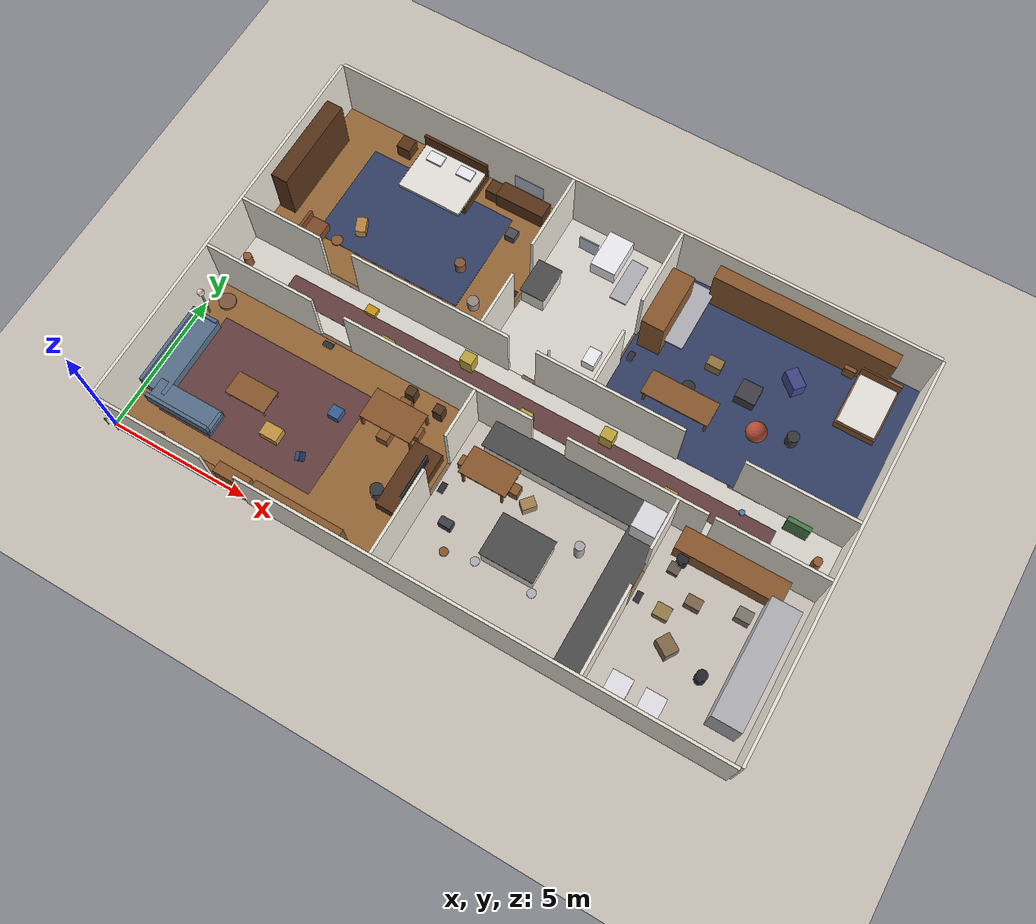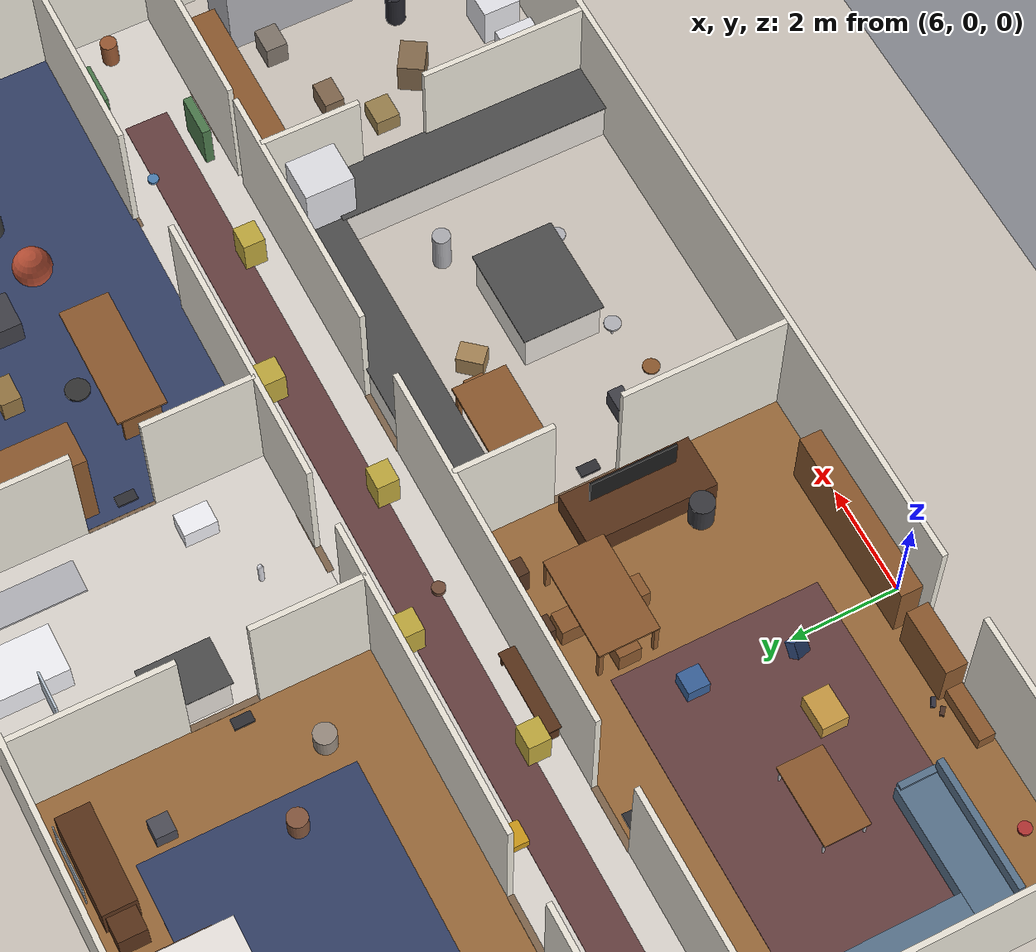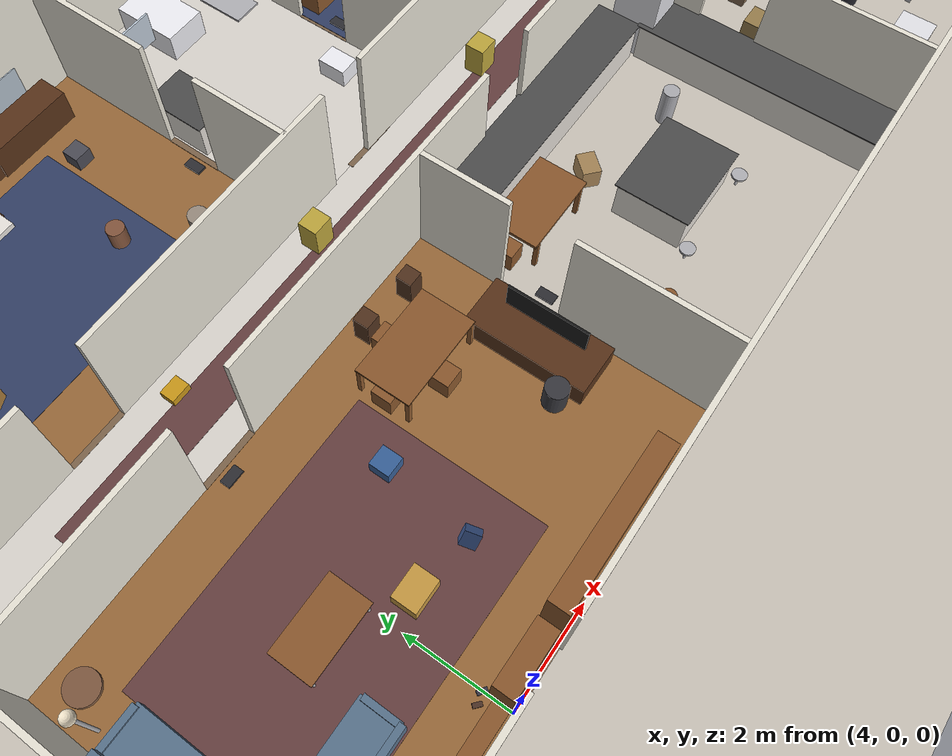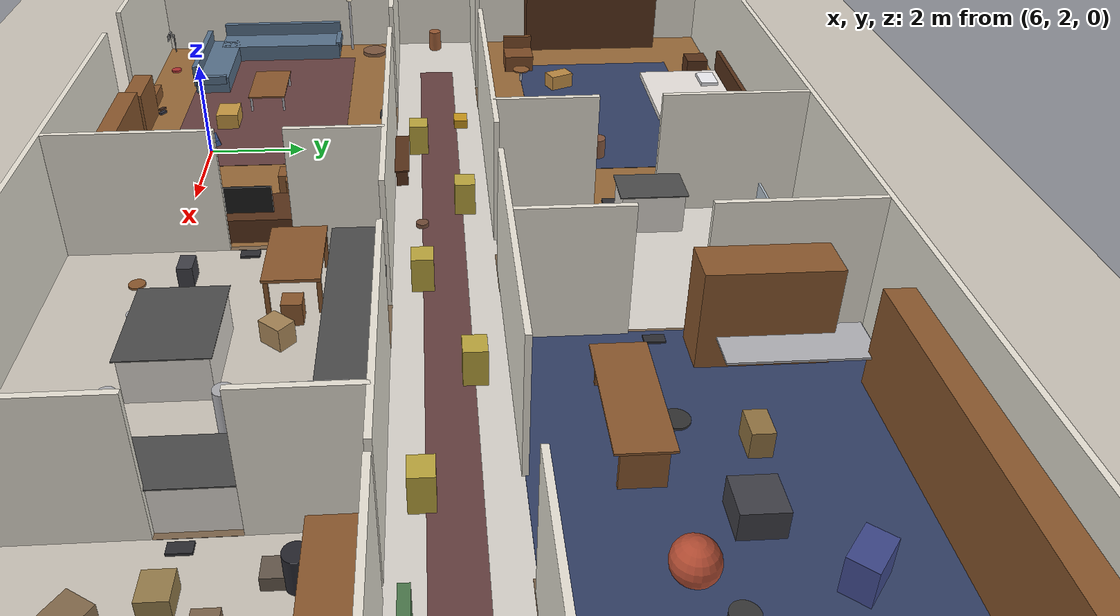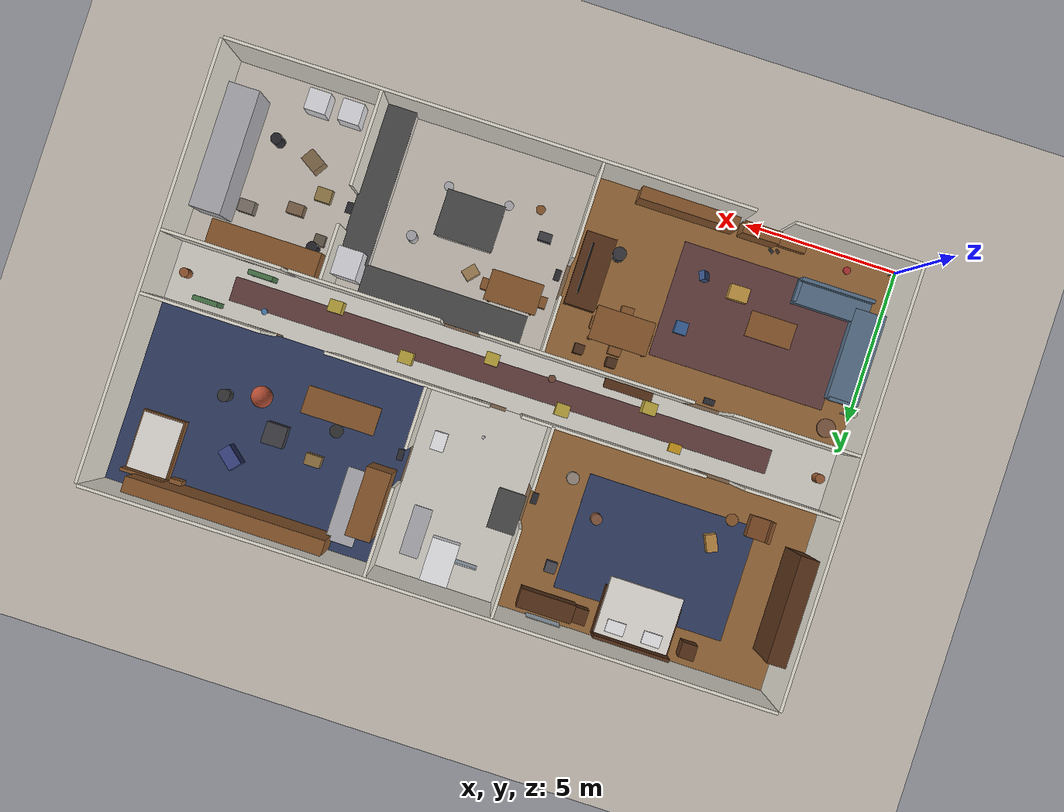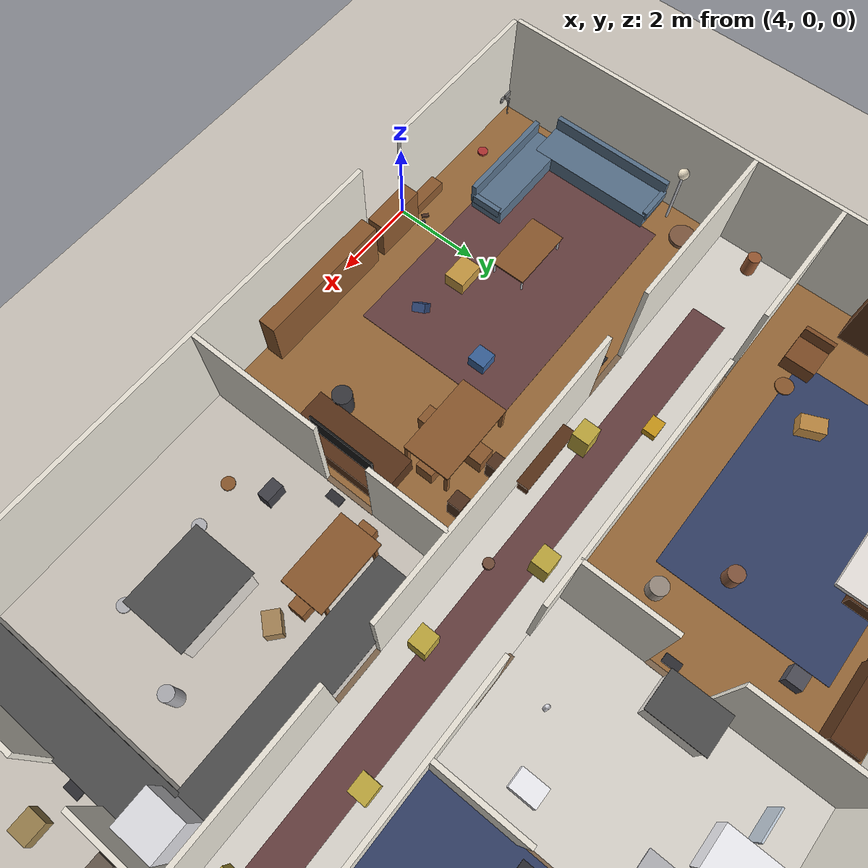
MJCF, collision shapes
<mujoco model="go2 home environment 300sqm navigation">
  <include file="scene_home_300.xml"/>

  <worldbody>
    <!--  Navigation-oriented add-ons                                     -->
    <!--  Keep obstacles low-speed traversable but force route changes     -->

    <!-- living room clutter -->
    <geom pos="4.6 2.2 0.18" type="box" size="0.32 0.24 0.18" euler="0 0 22" rgba="0.78 0.60 0.26 1"/>
    <geom pos="6.0 3.8 0.16" type="box" size="0.20 0.20 0.16" rgba="0.22 0.38 0.60 1"/>
    <geom pos="8.6 2.2 0.28" type="cylinder" size="0.22 0.28" rgba="0.22 0.22 0.24 1"/>

    <!-- dining pinch point -->
    <geom pos="7.8 5.55 0.30" type="box" size="0.16 0.16 0.30" rgba="0.32 0.20 0.12 1"/>
    <geom pos="8.9 5.45 0.30" type="box" size="0.16 0.16 0.30" rgba="0.32 0.20 0.12 1"/>

    <!-- kitchen route shaping -->
    <geom pos="12.9 4.2 0.22" type="box" size="0.24 0.18 0.22" euler="0 0 -18" rgba="0.65 0.52 0.34 1"/>
    <geom pos="15.0 3.7 0.40" type="cylinder" size="0.16 0.40" rgba="0.68 0.68 0.70 1"/>
    <geom pos="11.0 2.4 0.20" type="box" size="0.22 0.14 0.20" rgba="0.25 0.25 0.28 1"/>

    <!-- utility room congestion -->
    <geom pos="18.7 2.4 0.32" type="box" size="0.30 0.24 0.32" euler="0 0 12" rgba="0.52 0.42 0.30 1"/>
    <geom pos="20.3 4.4 0.24" type="box" size="0.25 0.20 0.24" rgba="0.50 0.46 0.42 1"/>
    <geom pos="17.9 5.0 0.30" type="cylinder" size="0.18 0.30" rgba="0.15 0.15 0.18 1"/>

    <!-- long hallway slalom -->
    <geom pos="6.2 6.55 0.34" type="box" size="0.22 0.20 0.34" rgba="0.75 0.66 0.24 1"/>
    <geom pos="8.8 7.45 0.34" type="box" size="0.22 0.20 0.34" rgba="0.75 0.66 0.24 1"/>
    <geom pos="11.4 6.60 0.34" type="box" size="0.22 0.20 0.34" rgba="0.75 0.66 0.24 1"/>
    <geom pos="14.0 7.40 0.34" type="box" size="0.22 0.20 0.34" rgba="0.75 0.66 0.24 1"/>
    <geom pos="16.6 6.55 0.34" type="box" size="0.22 0.20 0.34" rgba="0.75 0.66 0.24 1"/>

    <!-- hallway partial narrowing near east side -->
    <!-- Keep the visual cue, but leave more practical clearance for Go2 -->
    <geom pos="19.1 6.35 0.45" type="box" size="0.40 0.08 0.45" rgba="0.30 0.48 0.30 1"/>
    <geom pos="20.5 7.65 0.45" type="box" size="0.40 0.08 0.45" rgba="0.30 0.48 0.30 1"/>

    <!-- master bedroom navigation clutter -->
    <geom pos="3.0 10.0 0.18" type="box" size="0.28 0.18 0.18" euler="0 0 -20" rgba="0.74 0.54 0.26 1"/>
    <geom pos="6.7 10.4 0.22" type="cylinder" size="0.18 0.22" rgba="0.52 0.34 0.24 1"/>
    <geom pos="7.6 12.3 0.16" type="box" size="0.18 0.18 0.16" rgba="0.30 0.30 0.34 1"/>

    <!-- bathroom doorway precision obstacle -->
    <geom pos="10.9 9.05 0.07" type="capsule" size="0.05 0.34" euler="0 0 90" rgba="0.85 0.85 0.88 1"/>

    <!-- study / bedroom route shaping -->
    <geom pos="15.8 11.4 0.24" type="box" size="0.26 0.18 0.24" rgba="0.58 0.46 0.26 1"/>
    <geom pos="18.3 12.1 0.32" type="box" size="0.35 0.22 0.32" euler="0 0 15" rgba="0.24 0.28 0.54 1"/>
    <geom pos="19.1 10.3 0.28" type="cylinder" size="0.20 0.28" rgba="0.22 0.22 0.22 1"/>

    <!-- low traversability checks near thresholds -->
    <geom pos="4.4 5.75 0.03" type="box" size="0.18 0.10 0.03" rgba="0.18 0.18 0.20 1"/>
    <geom pos="12.4 5.75 0.03" type="box" size="0.18 0.10 0.03" rgba="0.18 0.18 0.20 1"/>
    <geom pos="19.4 5.75 0.03" type="box" size="0.18 0.10 0.03" rgba="0.18 0.18 0.20 1"/>
    <geom pos="10.25 3.4 0.03" type="box" size="0.10 0.18 0.03" rgba="0.18 0.18 0.20 1"/>
    <geom pos="17.25 3.4 0.03" type="box" size="0.10 0.18 0.03" rgba="0.18 0.18 0.20 1"/>
    <geom pos="8.75 10.4 0.03" type="box" size="0.10 0.18 0.03" rgba="0.18 0.18 0.20 1"/>
    <geom pos="13.25 10.4 0.03" type="box" size="0.10 0.18 0.03" rgba="0.18 0.18 0.20 1"/>
  </worldbody>
</mujoco>

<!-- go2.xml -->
<mujoco model="go2">
  <compiler angle="radian" meshdir="assets/go2/assets" autolimits="true" />

  <option cone="elliptic" impratio="100" />

  <default>
    <default class="go2">
      <geom friction="0.4" margin="0.001" condim="1"/>
      <joint axis="0 1 0" damping="0.1" armature="0.01" frictionloss="0.2"/>
      <motor ctrlrange="-23.7 23.7"/>
      <default class="abduction">
        <joint axis="1 0 0" range="-1.0472 1.0472"/>
      </default>
      <default class="hip">
        <default class="front_hip">
          <joint range="-1.5708 3.4907"/>
        </default>
        <default class="back_hip">
          <joint range="-0.5236 4.5379"/>
        </default>
      </default>
      <default class="knee">
        <joint range="-2.7227 -0.83776"/>
        <motor ctrlrange="-45.43 45.43"/>
      </default>
      <default class="visual">
        <geom type="mesh" contype="0" conaffinity="0" group="2"/>
      </default>
      <default class="collision">
        <geom group="3"/>
        <default class="foot">
          <geom size="0.022" pos="-0.002 0 -0.213" priority="1" condim="6"
            friction="0.4 0.02 0.01"/>
        </default>
      </default>
    </default>
  </default>

  <asset>
    <material name="metal" rgba=".9 .95 .95 1" />
    <material name="black" rgba="0 0 0 1" />
    <material name="white" rgba="1 1 1 1" />
    <material name="gray" rgba="0.671705 0.692426 0.774270 1" />

    <mesh file="base_0.obj" />
    <mesh file="base_1.obj" />
    <mesh file="base_2.obj" />
    <mesh file="base_3.obj" />
    <mesh file="base_4.obj" />
    <mesh file="hip_0.obj" />
    <mesh file="hip_1.obj" />
    <mesh file="thigh_0.obj" />
    <mesh file="thigh_1.obj" />
    <mesh file="thigh_mirror_0.obj" />
    <mesh file="thigh_mirror_1.obj" />
    <mesh file="calf_0.obj" />
    <mesh file="calf_1.obj" />
    <mesh file="calf_mirror_0.obj" />
    <mesh file="calf_mirror_1.obj" />
    <mesh file="foot.obj" />
  </asset>

  <worldbody>
    <body name="base_link" pos="0 0 0.445" childclass="go2">
      <inertial pos="0.021112 0 -0.005366" quat="-0.000543471 0.713435 -0.00173769 0.700719"
        mass="6.921"
        diaginertia="0.107027 0.0980771 0.0244531" />
      <freejoint />
      <geom mesh="base_0" material="black" class="visual" />
      <geom mesh="base_1" material="black" class="visual" />
      <geom mesh="base_2" material="black" class="visual" />
      <geom mesh="base_3" material="white" class="visual" />
      <geom mesh="base_4" material="gray" class="visual" />
      <geom size="0.1881 0.04675 0.057" type="box" class="collision" />
      <geom size="0.05 0.045" pos="0.285 0 0.01" type="cylinder" class="collision" />
      <geom size="0.047" pos="0.293 0 -0.06" class="collision" />
      <site name="imu" pos="-0.02557 0 0.04232" />
      <body name="FL_hip" pos="0.1934 0.0465 0">
        <inertial pos="-0.0054 0.00194 -0.000105" quat="0.497014 0.499245 0.505462 0.498237"
          mass="0.678"
          diaginertia="0.00088403 0.000596003 0.000479967" />
        <joint name="FL_hip_joint" class="abduction" />
        <geom mesh="hip_0" material="metal" class="visual" />
        <geom mesh="hip_1" material="gray" class="visual" />
        <geom size="0.046 0.02" pos="0 0.08 0" quat="1 1 0 0" type="cylinder" class="collision" />
        <body name="FL_thigh" pos="0 0.0955 0">
          <inertial pos="-0.00374 -0.0223 -0.0327" quat="0.829533 0.0847635 -0.0200632 0.551623"
            mass="1.152"
            diaginertia="0.00594973 0.00584149 0.000878787" />
          <joint name="FL_thigh_joint" class="front_hip" />
          <geom mesh="thigh_0" material="metal" class="visual" />
          <geom mesh="thigh_1" material="gray" class="visual" />
          <geom size="0.1065 0.01225 0.017" pos="0 0 -0.1065" quat="0.707107 0 0.707107 0"
            type="box" class="collision" />
          <body name="FL_calf" pos="0 0 -0.213">
            <inertial pos="0.00629595 -0.000622121 -0.141417"
              quat="0.710672 0.00154099 -0.00450087 0.703508"
              mass="0.241352" diaginertia="0.0014901 0.00146356 5.31397e-05" />
            <joint name="FL_calf_joint" class="knee" />
            <geom mesh="calf_0" material="gray" class="visual" />
            <geom mesh="calf_1" material="black" class="visual" />
            <geom size="0.012 0.06" pos="0.008 0 -0.06" quat="0.994493 0 -0.104807 0"
              type="cylinder" class="collision" />
            <geom size="0.011 0.0325" pos="0.02 0 -0.148" quat="0.999688 0 0.0249974 0"
              type="cylinder" class="collision" />
            <geom pos="0 0 -0.213" mesh="foot" class="visual" material="black" />
            <geom name="FL" class="foot" />
            <body name="FL_foot" pos="0 0 -0.213" />
          </body>
        </body>
      </body>
      <body name="FR_hip" pos="0.1934 -0.0465 0">
        <inertial pos="-0.0054 -0.00194 -0.000105" quat="0.498237 0.505462 0.499245 0.497014"
          mass="0.678"
          diaginertia="0.00088403 0.000596003 0.000479967" />
        <joint name="FR_hip_joint" class="abduction" />
        <geom mesh="hip_0" material="metal" class="visual" quat="4.63268e-05 1 0 0" />
        <geom mesh="hip_1" material="gray" class="visual" quat="4.63268e-05 1 0 0" />
        <geom size="0.046 0.02" pos="0 -0.08 0" quat="0.707107 0.707107 0 0" type="cylinder"
          class="collision" />
        <body name="FR_thigh" pos="0 -0.0955 0">
          <inertial pos="-0.00374 0.0223 -0.0327" quat="0.551623 -0.0200632 0.0847635 0.829533"
            mass="1.152"
            diaginertia="0.00594973 0.00584149 0.000878787" />
          <joint name="FR_thigh_joint" class="front_hip" />
          <geom mesh="thigh_mirror_0" material="metal" class="visual" />
          <geom mesh="thigh_mirror_1" material="gray" class="visual" />
          <geom size="0.1065 0.01225 0.017" pos="0 0 -0.1065" quat="0.707107 0 0.707107 0"
            type="box" class="collision" />
          <body name="FR_calf" pos="0 0 -0.213">
            <inertial pos="0.00629595 0.000622121 -0.141417"
              quat="0.703508 -0.00450087 0.00154099 0.710672"
              mass="0.241352" diaginertia="0.0014901 0.00146356 5.31397e-05" />
            <joint name="FR_calf_joint" class="knee" />
            <geom mesh="calf_mirror_0" material="gray" class="visual" />
            <geom mesh="calf_mirror_1" material="black" class="visual" />
            <geom size="0.013 0.06" pos="0.01 0 -0.06" quat="0.995004 0 -0.0998334 0"
              type="cylinder" class="collision" />
            <geom size="0.011 0.0325" pos="0.02 0 -0.148" quat="0.999688 0 0.0249974 0"
              type="cylinder" class="collision" />
            <geom pos="0 0 -0.213" mesh="foot" class="visual" material="black" />
            <geom name="FR" class="foot" />
            <body name="FR_foot" pos="0 0 -0.213" />
          </body>
        </body>
      </body>
      <body name="RL_hip" pos="-0.1934 0.0465 0">
        <inertial pos="0.0054 0.00194 -0.000105" quat="0.505462 0.498237 0.497014 0.499245"
          mass="0.678"
          diaginertia="0.00088403 0.000596003 0.000479967" />
        <joint name="RL_hip_joint" class="abduction" />
        <geom mesh="hip_0" material="metal" class="visual" quat="4.63268e-05 0 1 0" />
        <geom mesh="hip_1" material="gray" class="visual" quat="4.63268e-05 0 1 0" />
        <geom size="0.046 0.02" pos="0 0.08 0" quat="0.707107 0.707107 0 0" type="cylinder"
          class="collision" />
        <body name="RL_thigh" pos="0 0.0955 0">
          <inertial pos="-0.00374 -0.0223 -0.0327" quat="0.829533 0.0847635 -0.0200632 0.551623"
            mass="1.152"
            diaginertia="0.00594973 0.00584149 0.000878787" />
          <joint name="RL_thigh_joint" class="back_hip" />
          <geom mesh="thigh_0" material="metal" class="visual" />
          <geom mesh="thigh_1" material="gray" class="visual" />
          <geom size="0.1065 0.01225 0.017" pos="0 0 -0.1065" quat="0.707107 0 0.707107 0"
            type="box" class="collision" />
          <body name="RL_calf" pos="0 0 -0.213">
            <inertial pos="0.00629595 -0.000622121 -0.141417"
              quat="0.710672 0.00154099 -0.00450087 0.703508"
              mass="0.241352" diaginertia="0.0014901 0.00146356 5.31397e-05" />
            <joint name="RL_calf_joint" class="knee" />
            <geom mesh="calf_0" material="gray" class="visual" />
            <geom mesh="calf_1" material="black" class="visual" />
            <geom size="0.013 0.06" pos="0.01 0 -0.06" quat="0.995004 0 -0.0998334 0"
              type="cylinder" class="collision" />
            <geom size="0.011 0.0325" pos="0.02 0 -0.148" quat="0.999688 0 0.0249974 0"
              type="cylinder" class="collision" />
            <geom pos="0 0 -0.213" mesh="foot" class="visual" material="black" />
            <geom name="RL" class="foot" />
            <body name="RL_foot" pos="0 0 -0.213" />
          </body>
        </body>
      </body>
      <body name="RR_hip" pos="-0.1934 -0.0465 0">
        <inertial pos="0.0054 -0.00194 -0.000105" quat="0.499245 0.497014 0.498237 0.505462"
          mass="0.678"
          diaginertia="0.00088403 0.000596003 0.000479967" />
        <joint name="RR_hip_joint" class="abduction" />
        <geom mesh="hip_0" material="metal" class="visual"
          quat="2.14617e-09 4.63268e-05 4.63268e-05 -1" />
        <geom mesh="hip_1" material="gray" class="visual"
          quat="2.14617e-09 4.63268e-05 4.63268e-05 -1" />
        <geom size="0.046 0.02" pos="0 -0.08 0" quat="0.707107 0.707107 0 0" type="cylinder"
          class="collision" />
        <body name="RR_thigh" pos="0 -0.0955 0">
          <inertial pos="-0.00374 0.0223 -0.0327" quat="0.551623 -0.0200632 0.0847635 0.829533"
            mass="1.152"
            diaginertia="0.00594973 0.00584149 0.000878787" />
          <joint name="RR_thigh_joint" class="back_hip" />
          <geom mesh="thigh_mirror_0" material="metal" class="visual" />
          <geom mesh="thigh_mirror_1" material="gray" class="visual" />
          <geom size="0.1065 0.01225 0.017" pos="0 0 -0.1065" quat="0.707107 0 0.707107 0"
            type="box" class="collision" />
          <body name="RR_calf" pos="0 0 -0.213">
            <inertial pos="0.00629595 0.000622121 -0.141417"
              quat="0.703508 -0.00450087 0.00154099 0.710672"
              mass="0.241352" diaginertia="0.0014901 0.00146356 5.31397e-05" />
            <joint name="RR_calf_joint" class="knee" />
            <geom mesh="calf_mirror_0" material="gray" class="visual" />
            <geom mesh="calf_mirror_1" material="black" class="visual" />
            <geom size="0.013 0.06" pos="0.01 0 -0.06" quat="0.995004 0 -0.0998334 0"
              type="cylinder" class="collision" />
            <geom size="0.011 0.0325" pos="0.02 0 -0.148" quat="0.999688 0 0.0249974 0"
              type="cylinder" class="collision" />
            <geom pos="0 0 -0.213" mesh="foot" class="visual" material="black" />
            <geom name="RR" class="foot" />
            <body name="RR_foot" pos="0 0 -0.213" />
          </body>
        </body>
      </body>
    </body>
  </worldbody>

  <actuator>
    <motor class="abduction" name="FR_hip" joint="FR_hip_joint" />
    <motor class="hip" name="FR_thigh" joint="FR_thigh_joint" />
    <motor class="knee" name="FR_calf" joint="FR_calf_joint" />
    <motor class="abduction" name="FL_hip" joint="FL_hip_joint" />
    <motor class="hip" name="FL_thigh" joint="FL_thigh_joint" />
    <motor class="knee" name="FL_calf" joint="FL_calf_joint" />
    <motor class="abduction" name="RR_hip" joint="RR_hip_joint" />
    <motor class="hip" name="RR_thigh" joint="RR_thigh_joint" />
    <motor class="knee" name="RR_calf" joint="RR_calf_joint" />
    <motor class="abduction" name="RL_hip" joint="RL_hip_joint" />
    <motor class="hip" name="RL_thigh" joint="RL_thigh_joint" />
    <motor class="knee" name="RL_calf" joint="RL_calf_joint" />
  </actuator>

  <sensor>
    <jointpos name="FR_hip_pos" joint="FR_hip_joint" />
    <jointpos name="FR_thigh_pos" joint="FR_thigh_joint" />
    <jointpos name="FR_calf_pos" joint="FR_calf_joint" />
    <jointpos name="FL_hip_pos" joint="FL_hip_joint" />
    <jointpos name="FL_thigh_pos" joint="FL_thigh_joint" />
    <jointpos name="FL_calf_pos" joint="FL_calf_joint" />
    <jointpos name="RR_hip_pos" joint="RR_hip_joint" />
    <jointpos name="RR_thigh_pos" joint="RR_thigh_joint" />
    <jointpos name="RR_calf_pos" joint="RR_calf_joint" />
    <jointpos name="RL_hip_pos" joint="RL_hip_joint" />
    <jointpos name="RL_thigh_pos" joint="RL_thigh_joint" />
    <jointpos name="RL_calf_pos" joint="RL_calf_joint" />

    <jointvel name="FR_hip_vel" joint="FR_hip_joint" />
    <jointvel name="FR_thigh_vel" joint="FR_thigh_joint" />
    <jointvel name="FR_calf_vel" joint="FR_calf_joint" />
    <jointvel name="FL_hip_vel" joint="FL_hip_joint" />
    <jointvel name="FL_thigh_vel" joint="FL_thigh_joint" />
    <jointvel name="FL_calf_vel" joint="FL_calf_joint" />
    <jointvel name="RR_hip_vel" joint="RR_hip_joint" />
    <jointvel name="RR_thigh_vel" joint="RR_thigh_joint" />
    <jointvel name="RR_calf_vel" joint="RR_calf_joint" />
    <jointvel name="RL_hip_vel" joint="RL_hip_joint" />
    <jointvel name="RL_thigh_vel" joint="RL_thigh_joint" />
    <jointvel name="RL_calf_vel" joint="RL_calf_joint" />

    <jointactuatorfrc name="FR_hip_torque" joint="FR_hip_joint" noise="0.01" />
    <jointactuatorfrc name="FR_thigh_torque" joint="FR_thigh_joint" noise="0.01" />
    <jointactuatorfrc name="FR_calf_torque" joint="FR_calf_joint" noise="0.01" />
    <jointactuatorfrc name="FL_hip_torque" joint="FL_hip_joint" noise="0.01" />
    <jointactuatorfrc name="FL_thigh_torque" joint="FL_thigh_joint" noise="0.01" />
    <jointactuatorfrc name="FL_calf_torque" joint="FL_calf_joint" noise="0.01" />
    <jointactuatorfrc name="RR_hip_torque" joint="RR_hip_joint" noise="0.01" />
    <jointactuatorfrc name="RR_thigh_torque" joint="RR_thigh_joint" noise="0.01" />
    <jointactuatorfrc name="RR_calf_torque" joint="RR_calf_joint" noise="0.01" />
    <jointactuatorfrc name="RL_hip_torque" joint="RL_hip_joint" noise="0.01" />
    <jointactuatorfrc name="RL_thigh_torque" joint="RL_thigh_joint" noise="0.01" />
    <jointactuatorfrc name="RL_calf_torque" joint="RL_calf_joint" noise="0.01" />

    <framequat name="imu_quat" objtype="site" objname="imu" />
    <gyro name="imu_gyro" site="imu" />
    <accelerometer name="imu_acc" site="imu" />

    <framepos name="frame_pos" objtype="site" objname="imu" />
    <framelinvel name="frame_vel" objtype="site" objname="imu" />
  </sensor>

  <keyframe>
    <key name="home" qpos="0 0 0.27 1 0 0 0 0 0.9 -1.8 0 0.9 -1.8 0 0.9 -1.8 0 0.9 -1.8"
      ctrl="0 0.9 -1.8 0 0.9 -1.8 0 0.9 -1.8 0 0.9 -1.8" />
  </keyframe>
</mujoco>

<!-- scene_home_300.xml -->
<mujoco model="go2 home environment 300sqm">
  <include file="go2.xml"/>

  <statistic center="11 7 0.6" extent="13"/>

  <visual>
    <headlight diffuse="0.6 0.6 0.6" ambient="0.3 0.3 0.3" specular="0 0 0"/>
    <rgba haze="0.15 0.25 0.35 1"/>
    <global azimuth="-130" elevation="-20"/>
  </visual>

  <asset>
    <texture type="skybox" builtin="gradient" rgb1="0.8 0.85 0.9" rgb2="0.5 0.6 0.7" width="512" height="3072"/>

    <texture type="2d" name="tile_tex" builtin="checker" mark="edge"
      rgb1="0.85 0.82 0.78" rgb2="0.75 0.72 0.68" markrgb="0.9 0.88 0.85" width="300" height="300"/>
    <material name="tile" texture="tile_tex" texuniform="true" texrepeat="14 12" reflectance="0.3"/>

    <texture type="2d" name="wood_floor_tex" builtin="checker"
      rgb1="0.65 0.45 0.25" rgb2="0.55 0.38 0.20" width="200" height="200"/>
    <material name="wood_floor" texture="wood_floor_tex" texuniform="true" texrepeat="18 15" reflectance="0.15"/>

    <texture type="2d" name="carpet_tex" builtin="flat"
      rgb1="0.4 0.25 0.25" rgb2="0.35 0.2 0.2" width="128" height="128"/>
    <material name="carpet" texture="carpet_tex" texuniform="true" reflectance="0.05"/>

    <texture type="2d" name="carpet_blue_tex" builtin="flat"
      rgb1="0.2 0.25 0.4" rgb2="0.18 0.22 0.35" width="128" height="128"/>
    <material name="carpet_blue" texture="carpet_blue_tex" texuniform="true" reflectance="0.05"/>

    <texture type="2d" name="marble_tex" builtin="checker" mark="cross"
      rgb1="0.9 0.88 0.85" rgb2="0.82 0.80 0.77" markrgb="0.85 0.83 0.8" width="300" height="300"/>
    <material name="marble" texture="marble_tex" texuniform="true" texrepeat="7 6" reflectance="0.5"/>

    <texture type="cube" name="wall_tex" builtin="flat" rgb1="0.92 0.90 0.85" rgb2="0.92 0.90 0.85" width="128" height="128"/>
    <material name="wall" texture="wall_tex"/>
    <texture type="cube" name="wood_tex" builtin="flat" rgb1="0.55 0.35 0.18" rgb2="0.5 0.3 0.15" width="128" height="128"/>
    <material name="wood" texture="wood_tex"/>
    <texture type="cube" name="dark_wood_tex" builtin="flat" rgb1="0.35 0.2 0.1" rgb2="0.3 0.18 0.08" width="128" height="128"/>
    <material name="dark_wood" texture="dark_wood_tex"/>
    <texture type="cube" name="sofa_tex" builtin="flat" rgb1="0.35 0.45 0.55" rgb2="0.3 0.4 0.5" width="128" height="128"/>
    <material name="sofa" texture="sofa_tex"/>
    <texture type="cube" name="sofa_brown_tex" builtin="flat" rgb1="0.5 0.3 0.15" rgb2="0.45 0.27 0.12" width="128" height="128"/>
    <material name="sofa_brown" texture="sofa_brown_tex"/>
    <texture type="cube" name="chrome_tex" builtin="flat" rgb1="0.7 0.7 0.72" rgb2="0.65 0.65 0.67" width="128" height="128"/>
    <material name="chrome" texture="chrome_tex" reflectance="0.4"/>
    <texture type="cube" name="cabinet_tex" builtin="flat" rgb1="0.9 0.88 0.85" rgb2="0.85 0.83 0.8" width="128" height="128"/>
    <material name="cabinet" texture="cabinet_tex"/>
    <texture type="cube" name="counter_tex" builtin="flat" rgb1="0.3 0.3 0.3" rgb2="0.25 0.25 0.25" width="128" height="128"/>
    <material name="counter" texture="counter_tex" reflectance="0.3"/>
  </asset>

  <!--  LAYOUT: 22m x 14m = 308 sqm                                     -->
  <!--  South band (Y=0~6): living 10x6, kitchen 7x6, utility 5x6       -->
  <!--  Hallway    (Y=6~8): central spine 22x2                          -->
  <!--  North band (Y=8~14): master 9x6, bath 4x6, study/bed 9x6        -->

  <worldbody>
    <light pos="5 3 2.4" dir="0 0 -1" directional="true"/>
    <light pos="15 3 2.4" dir="0 0 -1" diffuse="0.5 0.5 0.5" specular="0.1 0.1 0.1"/>
    <light pos="5 11 2.4" dir="0 0 -1" diffuse="0.5 0.5 0.5" specular="0.1 0.1 0.1"/>
    <light pos="17 11 2.4" dir="0 0 -1" diffuse="0.5 0.5 0.5" specular="0.1 0.1 0.1"/>

    <geom name="floor" size="0 0 0.01" type="plane" material="tile"/>

    <!-- outer walls: 22m x 14m -->
    <geom pos="2.0  -0.05 1.25" type="box" size="2.0  0.05 1.25" material="wall"/>
    <geom pos="13.6 -0.05 1.25" type="box" size="8.4  0.05 1.25" material="wall"/>
    <geom pos="11.0 14.05 1.25" type="box" size="11.0 0.05 1.25" material="wall"/>
    <geom pos="-0.05 7.0 1.25" type="box" size="0.05 7.0 1.25" material="wall"/>
    <geom pos="22.05 7.0 1.25" type="box" size="0.05 7.0 1.25" material="wall"/>

    <!-- hallway walls -->
    <geom pos="2.0   6.0 1.25" type="box" size="2.0   0.05 1.25" material="wall"/>
    <geom pos="8.6   6.0 1.25" type="box" size="3.4   0.05 1.25" material="wall"/>
    <geom pos="15.6  6.0 1.25" type="box" size="2.4   0.05 1.25" material="wall"/>
    <geom pos="20.1  6.0 1.25" type="box" size="1.9   0.05 1.25" material="wall"/>

    <geom pos="1.5   8.0 1.25" type="box" size="1.5   0.05 1.25" material="wall"/>
    <geom pos="7.1   8.0 1.25" type="box" size="2.9   0.05 1.25" material="wall"/>
    <geom pos="13.6  8.0 1.25" type="box" size="2.6   0.05 1.25" material="wall"/>
    <geom pos="20.1  8.0 1.25" type="box" size="1.9   0.05 1.25" material="wall"/>

    <!-- south band separators -->
    <geom pos="10.0 1.5 1.25" type="box" size="0.05 1.5 1.25" material="wall"/>
    <geom pos="10.0 5.1 1.25" type="box" size="0.05 0.9 1.25" material="wall"/>
    <geom pos="17.0 1.5 1.25" type="box" size="0.05 1.5 1.25" material="wall"/>
    <geom pos="17.0 5.1 1.25" type="box" size="0.05 0.9 1.25" material="wall"/>

    <!-- north band separators -->
    <geom pos="9.0  9.0  1.25" type="box" size="0.05 1.0 1.25" material="wall"/>
    <geom pos="9.0  12.6 1.25" type="box" size="0.05 1.4 1.25" material="wall"/>
    <geom pos="13.0 9.0  1.25" type="box" size="0.05 1.0 1.25" material="wall"/>
    <geom pos="13.0 12.6 1.25" type="box" size="0.05 1.4 1.25" material="wall"/>

    <!-- door thresholds -->
    <geom pos="4.6  0.0  0.008" type="box" size="0.6 0.06 0.008" rgba="0.5 0.4 0.3 1"/>
    <geom pos="4.6  6.0  0.008" type="box" size="0.6 0.06 0.008" rgba="0.5 0.4 0.3 1"/>
    <geom pos="12.6 6.0  0.008" type="box" size="0.6 0.06 0.008" rgba="0.5 0.4 0.3 1"/>
    <geom pos="19.6 6.0  0.008" type="box" size="0.6 0.06 0.008" rgba="0.5 0.4 0.3 1"/>
    <geom pos="3.6  8.0  0.008" type="box" size="0.6 0.06 0.008" rgba="0.5 0.4 0.3 1"/>
    <geom pos="11.1 8.0  0.008" type="box" size="0.6 0.06 0.008" rgba="0.5 0.4 0.3 1"/>
    <geom pos="18.6 8.0  0.008" type="box" size="0.6 0.06 0.008" rgba="0.5 0.4 0.3 1"/>
    <geom pos="10.0 3.6  0.008" type="box" size="0.06 0.6 0.008" rgba="0.5 0.4 0.3 1"/>
    <geom pos="17.0 3.6  0.008" type="box" size="0.06 0.6 0.008" rgba="0.5 0.4 0.3 1"/>
    <geom pos="9.0  10.6 0.008" type="box" size="0.06 0.6 0.008" rgba="0.5 0.4 0.3 1"/>
    <geom pos="13.0 10.6 0.008" type="box" size="0.06 0.6 0.008" rgba="0.5 0.4 0.3 1"/>

    <!-- room 1: living room 10x6 -->
    <geom pos="5.0 3.0 0.005" type="box" size="5.0 3.0 0.005" material="wood_floor" contype="0" conaffinity="0"/>
    <geom pos="3.8 3.0 0.012" type="box" size="2.9 1.9 0.007" material="carpet" friction="1.5 0.05 0.01" contype="0" conaffinity="0"/>
    <geom pos="0.5 3.0 0.2" type="box" size="0.45 1.5 0.2" material="sofa"/>
    <geom pos="0.08 3.0 0.45" type="box" size="0.06 1.5 0.25" material="sofa"/>
    <geom pos="1.7 1.55 0.2" type="box" size="1.2 0.40 0.2" material="sofa"/>
    <geom pos="1.7 1.18 0.45" type="box" size="1.2 0.06 0.25" material="sofa"/>
    <geom pos="0.5 4.48 0.35" type="box" size="0.40 0.06 0.10" material="sofa"/>
    <geom pos="2.88 1.55 0.35" type="box" size="0.06 0.35 0.10" material="sofa"/>
    <geom pos="3.3 3.0 0.38" type="box" size="0.75 0.42 0.018" material="wood"/>
    <geom pos="2.62 2.63 0.18" type="cylinder" size="0.025 0.18" material="chrome"/>
    <geom pos="3.98 2.63 0.18" type="cylinder" size="0.025 0.18" material="chrome"/>
    <geom pos="2.62 3.37 0.18" type="cylinder" size="0.025 0.18" material="chrome"/>
    <geom pos="3.98 3.37 0.18" type="cylinder" size="0.025 0.18" material="chrome"/>
    <geom pos="9.3 3.0 0.25" type="box" size="0.5 1.2 0.25" material="dark_wood"/>
    <geom pos="9.5 3.0 0.7" type="box" size="0.02 0.8 0.35" rgba="0.1 0.1 0.1 1"/>
    <geom pos="7.0 0.25 0.6" type="box" size="1.6 0.20 0.6" material="wood"/>
    <geom pos="0.3 4.8 0.7" type="cylinder" size="0.03 0.7" material="chrome"/>
    <geom pos="0.3 4.8 1.45" type="sphere" size="0.12" rgba="0.95 0.9 0.8 0.6"/>
    <geom pos="7.8 4.5 0.72" type="box" size="0.95 0.55 0.02" material="wood"/>
    <geom pos="6.9 4.0 0.35" type="box" size="0.04 0.04 0.35" material="wood"/>
    <geom pos="8.7 4.0 0.35" type="box" size="0.04 0.04 0.35" material="wood"/>
    <geom pos="6.9 5.0 0.35" type="box" size="0.04 0.04 0.35" material="wood"/>
    <geom pos="8.7 5.0 0.35" type="box" size="0.04 0.04 0.35" material="wood"/>
    <geom pos="7.0 4.5 0.22" type="box" size="0.20 0.20 0.22" material="wood"/>
    <geom pos="8.6 4.5 0.22" type="box" size="0.20 0.20 0.22" material="wood"/>
    <geom pos="7.8 3.9 0.22" type="box" size="0.20 0.20 0.22" material="wood"/>
    <geom pos="7.8 5.1 0.22" type="box" size="0.20 0.20 0.22" material="wood"/>
    <geom pos="4.6 0.25 0.5" type="box" size="0.6 0.20 0.5" material="wood"/>
    <geom pos="3.5 0.2 0.15" type="box" size="0.5 0.15 0.15" material="wood"/>
    <geom pos="3.8 0.5 0.03" type="box" size="0.08 0.04 0.03" euler="0 0 15" rgba="0.3 0.2 0.15 1"/>
    <geom pos="4.0 0.55 0.03" type="box" size="0.09 0.04 0.03" euler="0 0 -10" rgba="0.2 0.2 0.25 1"/>
    <geom pos="1.5 0.4 0.03" type="cylinder" size="0.12 0.03" rgba="0.7 0.2 0.2 1"/>
    <geom pos="5.5 0.2 0.3" type="cylinder" size="0.08 0.3" material="chrome"/>

    <!-- room 2: kitchen 7x6 -->
    <geom pos="13.5 3.0 0.005" type="box" size="3.5 3.0 0.005" material="tile" contype="0" conaffinity="0"/>
    <geom pos="16.5 2.5 0.42" type="box" size="0.45 2.5 0.42" material="cabinet"/>
    <geom pos="16.5 2.5 0.85" type="box" size="0.50 2.55 0.01" material="counter"/>
    <geom pos="13.4 5.5 0.42" type="box" size="2.6 0.45 0.42" material="cabinet"/>
    <geom pos="13.4 5.5 0.85" type="box" size="2.65 0.50 0.01" material="counter"/>
    <geom pos="13.4 2.7 0.42" type="box" size="0.9 0.7 0.42" material="cabinet"/>
    <geom pos="13.4 2.7 0.85" type="box" size="0.95 0.75 0.01" material="counter"/>
    <geom pos="12.4 1.8 0.3" type="cylinder" size="0.15 0.02" material="chrome"/>
    <geom pos="12.4 1.8 0.15" type="cylinder" size="0.025 0.15" material="chrome"/>
    <geom pos="14.4 1.8 0.3" type="cylinder" size="0.15 0.02" material="chrome"/>
    <geom pos="14.4 1.8 0.15" type="cylinder" size="0.025 0.15" material="chrome"/>
    <geom pos="16.5 5.2 0.9" type="box" size="0.40 0.45 0.9" rgba="0.88 0.88 0.90 1"/>
    <geom pos="16.5 0.6 0.42" type="box" size="0.35 0.35 0.42" rgba="0.15 0.15 0.15 1"/>
    <geom pos="11.4 4.4 0.76" type="box" size="0.85 0.50 0.03" material="wood"/>
    <geom pos="10.7 3.95 0.37" type="box" size="0.04 0.04 0.37" material="wood"/>
    <geom pos="12.1 3.95 0.37" type="box" size="0.04 0.04 0.37" material="wood"/>
    <geom pos="10.7 4.85 0.37" type="box" size="0.04 0.04 0.37" material="wood"/>
    <geom pos="12.1 4.85 0.37" type="box" size="0.04 0.04 0.37" material="wood"/>
    <geom pos="10.5 4.4 0.22" type="box" size="0.18 0.18 0.22" material="wood"/>
    <geom pos="12.3 4.4 0.22" type="box" size="0.18 0.18 0.22" material="wood"/>

    <!-- room 3: utility / storage 5x6 -->
    <geom pos="19.5 3.0 0.005" type="box" size="2.5 3.0 0.005" material="tile" contype="0" conaffinity="0"/>
    <geom pos="18.0 0.6 0.42" type="box" size="0.35 0.35 0.42" rgba="0.9 0.9 0.92 1"/>
    <geom pos="19.1 0.6 0.42" type="box" size="0.35 0.35 0.42" rgba="0.9 0.9 0.92 1"/>
    <geom pos="21.2 3.0 0.8" type="box" size="0.5 2.0 0.8" material="chrome"/>
    <geom pos="19.3 5.5 0.4" type="box" size="1.8 0.4 0.4" material="wood"/>
    <geom pos="18.1 3.3 0.18" type="box" size="0.25 0.22 0.18" rgba="0.6 0.5 0.3 1"/>
    <geom pos="18.8 4.0 0.22" type="box" size="0.26 0.18 0.22" rgba="0.5 0.4 0.3 1"/>
    <geom pos="17.8 4.7 0.12" type="box" size="0.18 0.18 0.12" rgba="0.4 0.35 0.3 1"/>
    <geom pos="20.0 2.1 0.35" type="cylinder" size="0.18 0.35" rgba="0.15 0.15 0.18 1"/>

    <!-- hallway -->
    <geom pos="11.0 7.0 0.006" type="box" size="11.0 1.0 0.006" material="marble" contype="0" conaffinity="0"/>
    <geom pos="11.0 7.0 0.013" type="box" size="9.0 0.4 0.007" material="carpet" friction="1.2 0.05 0.01" contype="0" conaffinity="0"/>
    <geom pos="7.0 6.2 0.35" type="box" size="0.8 0.15 0.015" material="dark_wood"/>
    <geom pos="6.25 6.2 0.168" type="box" size="0.03 0.12 0.168" material="dark_wood"/>
    <geom pos="7.75 6.2 0.168" type="box" size="0.03 0.12 0.168" material="dark_wood"/>
    <geom pos="0.4 7.0 0.25" type="cylinder" size="0.15 0.25" rgba="0.6 0.35 0.2 1"/>
    <geom pos="21.5 7.0 0.25" type="cylinder" size="0.15 0.25" rgba="0.6 0.35 0.2 1"/>
    <geom pos="15.0 7.0 0.006" type="box" size="0.9 0.3 0.004" rgba="0.3 0.6 0.5 0.9"/>
    <geom pos="5.0 7.5 0.1" type="box" size="0.2 0.15 0.1" rgba="0.8 0.6 0.1 1"/>
    <geom pos="18.8 7.4 0.03" type="cylinder" size="0.1 0.03" rgba="0.3 0.5 0.7 1" contype="0" conaffinity="0"/>

    <!-- room 4: master bedroom 9x6 -->
    <geom pos="4.5 11.0 0.005" type="box" size="4.5 3.0 0.005" material="wood_floor" contype="0" conaffinity="0"/>
    <geom pos="4.5 11.0 0.012" type="box" size="2.8 1.9 0.007" material="carpet_blue" friction="1.5 0.05 0.01" contype="0" conaffinity="0"/>
    <geom pos="4.5 13.1 0.18" type="box" size="1.25 0.8 0.18" material="dark_wood"/>
    <geom pos="4.5 12.95 0.40" type="box" size="1.20 1.0 0.06" rgba="0.92 0.90 0.88 1"/>
    <geom pos="4.5 13.85 0.6" type="box" size="1.25 0.05 0.35" material="dark_wood"/>
    <geom pos="3.9 13.45 0.48" type="box" size="0.3 0.2 0.06" rgba="0.95 0.95 0.97 1"/>
    <geom pos="5.1 13.45 0.48" type="box" size="0.3 0.2 0.06" rgba="0.95 0.95 0.97 1"/>
    <geom pos="2.7 13.45 0.28" type="box" size="0.25 0.25 0.28" material="dark_wood"/>
    <geom pos="6.3 13.45 0.28" type="box" size="0.25 0.25 0.28" material="dark_wood"/>
    <geom pos="0.35 11.1 1.0" type="box" size="0.30 1.7 1.0" material="dark_wood"/>
    <geom pos="7.4 13.45 0.35" type="box" size="0.9 0.3 0.35" material="dark_wood"/>
    <geom pos="7.4 13.85 0.9" type="box" size="0.55 0.01 0.35" rgba="0.7 0.75 0.8 0.8"/>
    <geom pos="1.7 9.1 0.2" type="box" size="0.35 0.35 0.2" material="sofa_brown"/>
    <geom pos="1.38 9.1 0.45" type="box" size="0.05 0.35 0.25" material="sofa_brown"/>
    <geom pos="2.6 9.1 0.3" type="cylinder" size="0.2 0.015" material="wood"/>
    <geom pos="2.6 9.1 0.143" type="cylinder" size="0.03 0.143" material="chrome"/>
    <geom pos="7.8 9.4 0.2" type="cylinder" size="0.2 0.2" rgba="0.6 0.55 0.5 1"/>

    <!-- room 5: bathroom 4x6 -->
    <geom pos="11.0 11.0 0.006" type="box" size="2.0 3.0 0.006" material="marble" contype="0" conaffinity="0"/>
    <geom pos="11.0 13.2 0.3" type="box" size="0.45 0.7 0.3" rgba="0.95 0.95 0.97 1"/>
    <geom pos="9.5 11.0 0.4" type="box" size="0.4 0.6 0.4" material="cabinet"/>
    <geom pos="9.5 11.0 0.81" type="box" size="0.45 0.65 0.01" material="counter"/>
    <geom pos="12.2 9.6 0.2" type="box" size="0.22 0.3 0.2" rgba="0.95 0.95 0.97 1"/>
    <geom pos="12.0 12.5 0.6" type="box" size="0.3 0.8 0.02" material="chrome"/>
    <geom pos="10.2 13.0 0.65" type="box" size="0.35 0.02 0.35" rgba="0.75 0.8 0.85 0.8"/>

    <!-- room 6: study / bedroom 9x6 -->
    <geom pos="17.5 11.0 0.01" type="box" size="4.5 3.0 0.01" material="carpet_blue" friction="1.5 0.05 0.01" contype="0" conaffinity="0"/>
    <geom pos="20.7 12.5 0.18" type="box" size="0.7 1.0 0.18" material="wood"/>
    <geom pos="20.7 12.5 0.38" type="box" size="0.65 0.95 0.05" rgba="0.92 0.90 0.88 1"/>
    <geom pos="20.7 13.45 0.55" type="box" size="0.7 0.05 0.30" material="wood"/>
    <geom pos="19.7 13.5 0.25" type="box" size="0.2 0.2 0.25" material="wood"/>
    <geom pos="15.4 9.6 0.72" type="box" size="1.2 0.45 0.02" material="wood"/>
    <geom pos="14.3 9.6 0.35" type="box" size="0.04 0.35 0.35" material="wood"/>
    <geom pos="16.5 9.6 0.35" type="box" size="0.04 0.35 0.35" material="wood"/>
    <geom pos="15.4 10.3 0.22" type="cylinder" size="0.22 0.02" rgba="0.2 0.2 0.2 1"/>
    <geom pos="15.4 10.3 0.11" type="cylinder" size="0.03 0.11" material="chrome"/>
    <geom pos="17.7 13.7 0.9" type="box" size="3.2 0.25 0.9" material="wood"/>
    <geom pos="13.6 12.0 0.9" type="box" size="0.4 1.1 0.9" material="wood"/>
    <geom pos="18.0 10.0 0.2" type="sphere" size="0.35" rgba="0.7 0.3 0.2 1"/>
    <geom pos="17.2 11.0 0.25" type="box" size="0.35 0.35 0.25" rgba="0.25 0.25 0.28 1"/>
    <geom pos="14.2 12.4 0.6" type="box" size="0.45 1.2 0.02" material="chrome"/>

    <!-- scattered obstacles -->
    <geom pos="5.8 2.0 0.15" type="box" size="0.15 0.1 0.15" euler="0 -15 20" rgba="0.2 0.3 0.5 1"/>
    <geom pos="0.6 5.4 0.05" type="cylinder" size="0.3 0.05" rgba="0.5 0.35 0.25 1"/>
    <geom pos="11.4 1.6 0.22" type="cylinder" size="0.15 0.02" material="wood"/>
    <geom pos="11.4 1.6 0.1" type="cylinder" size="0.025 0.1" material="chrome"/>
    <geom pos="16.9 2.8 0.04" type="box" size="0.12 0.08 0.04" euler="0 0 18" rgba="0.35 0.22 0.18 1"/>
    <geom pos="9.4 6.6 0.05" type="cylinder" size="0.12 0.05" rgba="0.45 0.3 0.22 1"/>
  </worldbody>
</mujoco>
